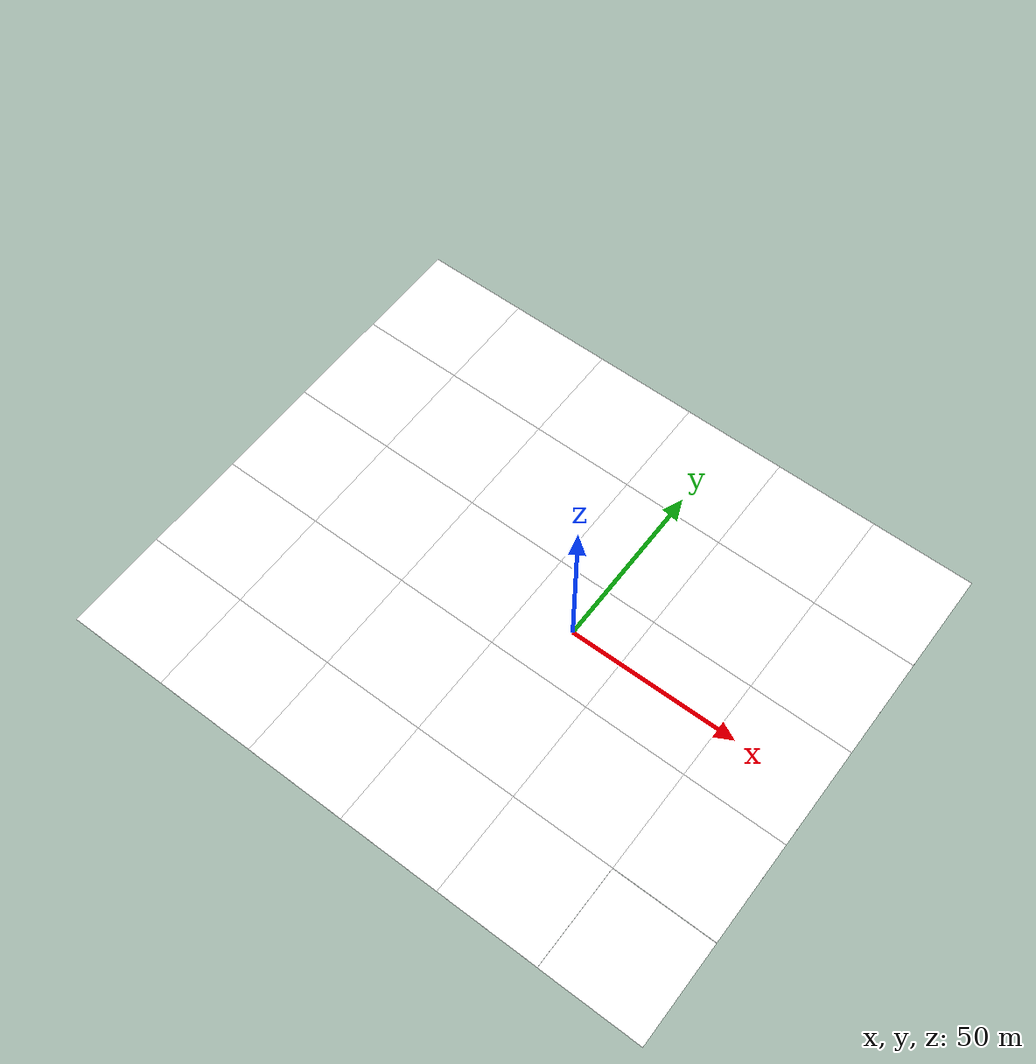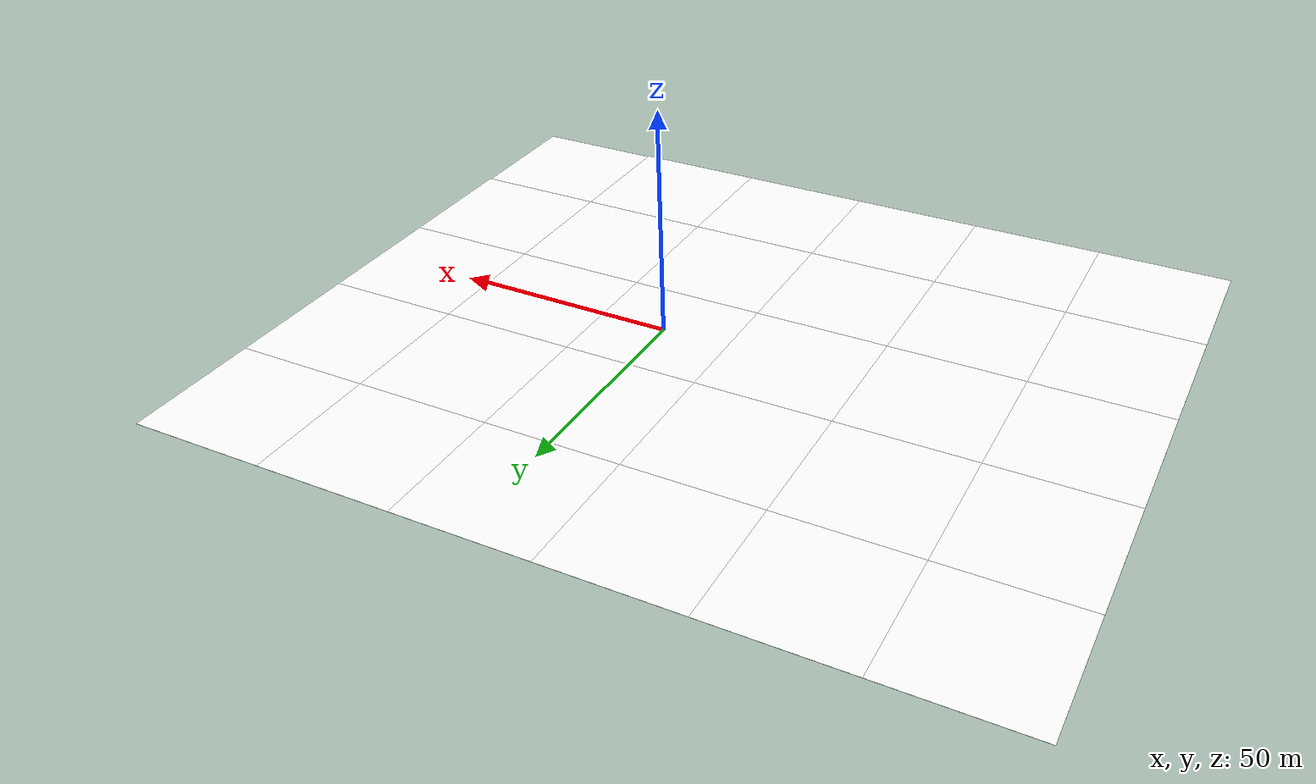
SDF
<sdf version="1.10">
 <world name="iris_runway2">
  <physics name="1ms" type="ignore">
   <max_step_size>0.001</max_step_size>
   <real_time_factor>1</real_time_factor>
   <real_time_update_rate>1000</real_time_update_rate>
  </physics>
  <plugin name="gz::sim::systems::Physics" filename="gz-sim-physics-system"/>
  <plugin name="gz::sim::systems::Sensors" filename="gz-sim-sensors-system">
   <render_engine>ogre2</render_engine>
  </plugin>
  <plugin name="gz::sim::systems::UserCommands" filename="gz-sim-user-commands-system"/>
  <plugin name="gz::sim::systems::SceneBroadcaster" filename="gz-sim-scene-broadcaster-system"/>
  <plugin name="gz::sim::systems::Imu" filename="gz-sim-imu-system"/>
  <scene>
   <ambient>1 1 1 1</ambient>
   <background>0.800000012 0.800000012 0.800000012 1</background>
   <shadows>true</shadows>
  </scene>
  <gravity>0 0 -9.8000000000000007</gravity>
  <magnetic_field>5.5644999999999998e-06 2.2875799999999999e-05 -4.2388400000000002e-05</magnetic_field>
  <atmosphere type="adiabatic"/>
  <include><uri>model://custom_ground_plane</uri><pose>0 0 -0.001 0 0 0</pose></include>
  <include>
   <uri>file:///home/ds/Documents/gh/ardugzros2/install/tutorial_2/share/tutorial_2/models/grasspatch</uri>
   <name>grass_patch_1</name>
   <pose>60 -60 0 0 0 0</pose>
  </include>
  <include>
   <uri>file:///home/ds/Documents/gh/ardugzros2/install/tutorial_2/share/tutorial_2/models/grasspatch</uri>
   <name>grass_patch_2</name>
   <pose>30 -60 0 0 0 0</pose>
  </include>
  <include>
   <uri>file:///home/ds/Documents/gh/ardugzros2/install/tutorial_2/share/tutorial_2/models/grasspatch</uri>
   <name>grass_patch_3</name>
   <pose>0 -60 0 0 0 0</pose>
  </include>
  <include>
   <uri>file:///home/ds/Documents/gh/ardugzros2/install/tutorial_2/share/tutorial_2/models/grasspatch</uri>
   <name>grass_patch_4</name>
   <pose>-30 -60 0 0 0 0</pose>
  </include>
  <include>
   <uri>file:///home/ds/Documents/gh/ardugzros2/install/tutorial_2/share/tutorial_2/models/grasspatch</uri>
   <name>grass_patch_5</name>
   <pose>-60 -60 0 0 0 0</pose>
  </include>
  <include>
   <uri>file:///home/ds/Documents/gh/ardugzros2/install/tutorial_2/share/tutorial_2/models/grasspatch</uri>
   <name>grass_patch_6</name>
   <pose>-90 -60 0 0 0 0</pose>
  </include>
  <include>
   <uri>file:///home/ds/Documents/gh/ardugzros2/install/tutorial_2/share/tutorial_2/models/grasspatch</uri>
   <name>grass_patch_7</name>
   <pose>60 -30 0 0 0 0</pose>
  </include>
  <include>
   <uri>file:///home/ds/Documents/gh/ardugzros2/install/tutorial_2/share/tutorial_2/models/grasspatch</uri>
   <name>grass_patch_8</name>
   <pose>30 -30 0 0 0 0</pose>
  </include>
  <include>
   <uri>file:///home/ds/Documents/gh/ardugzros2/install/tutorial_2/share/tutorial_2/models/grasspatch</uri>
   <name>grass_patch_9</name>
   <pose>0 -30 0 0 0 0</pose>
  </include>
  <include>
   <uri>file:///home/ds/Documents/gh/ardugzros2/install/tutorial_2/share/tutorial_2/models/grasspatch</uri>
   <name>grass_patch_10</name>
   <pose>-30 -30 0 0 0 0</pose>
  </include>
  <include>
   <uri>file:///home/ds/Documents/gh/ardugzros2/install/tutorial_2/share/tutorial_2/models/grasspatch</uri>
   <name>grass_patch_11</name>
   <pose>-60 -30 0 0 0 0</pose>
  </include>
  <include>
   <uri>file:///home/ds/Documents/gh/ardugzros2/install/tutorial_2/share/tutorial_2/models/grasspatch</uri>
   <name>grass_patch_12</name>
   <pose>-90 -30 0 0 0 0</pose>
  </include>
  <include>
   <uri>file:///home/ds/Documents/gh/ardugzros2/install/tutorial_2/share/tutorial_2/models/grasspatch</uri>
   <name>grass_patch_13</name>
   <pose>60 0 0 0 0 0</pose>
  </include>
  <include>
   <uri>file:///home/ds/Documents/gh/ardugzros2/install/tutorial_2/share/tutorial_2/models/grasspatch</uri>
   <name>grass_patch_14</name>
   <pose>30 0 0 0 0 0</pose>
  </include>
  <include>
   <uri>file:///home/ds/Documents/gh/ardugzros2/install/tutorial_2/share/tutorial_2/models/grasspatch</uri>
   <name>grass_patch_15</name>
  </include>
  <include>
   <uri>file:///home/ds/Documents/gh/ardugzros2/install/tutorial_2/share/tutorial_2/models/grasspatch</uri>
   <name>grass_patch_16</name>
   <pose>-30 0 0 0 0 0</pose>
  </include>
  <include>
   <uri>file:///home/ds/Documents/gh/ardugzros2/install/tutorial_2/share/tutorial_2/models/grasspatch</uri>
   <name>grass_patch_17</name>
   <pose>-60 0 0 0 0 0</pose>
  </include>
  <include>
   <uri>file:///home/ds/Documents/gh/ardugzros2/install/tutorial_2/share/tutorial_2/models/grasspatch</uri>
   <name>grass_patch_18</name>
   <pose>-90 0 0 0 0 0</pose>
  </include>
  <include>
   <uri>file:///home/ds/Documents/gh/ardugzros2/install/tutorial_2/share/tutorial_2/models/grasspatch</uri>
   <name>grass_patch_19</name>
   <pose>60 30 0 0 0 0</pose>
  </include>
  <include>
   <uri>file:///home/ds/Documents/gh/ardugzros2/install/tutorial_2/share/tutorial_2/models/grasspatch</uri>
   <name>grass_patch_20</name>
   <pose>30 30 0 0 0 0</pose>
  </include>
  <include>
   <uri>file:///home/ds/Documents/gh/ardugzros2/install/tutorial_2/share/tutorial_2/models/grasspatch</uri>
   <name>grass_patch_21</name>
   <pose>0 30 0 0 0 0</pose>
  </include>
  <include>
   <uri>file:///home/ds/Documents/gh/ardugzros2/install/tutorial_2/share/tutorial_2/models/grasspatch</uri>
   <name>grass_patch_22</name>
   <pose>-30 30 0 0 0 0</pose>
  </include>
  <include>
   <uri>file:///home/ds/Documents/gh/ardugzros2/install/tutorial_2/share/tutorial_2/models/grasspatch</uri>
   <name>grass_patch_23</name>
   <pose>-60 30 0 0 0 0</pose>
  </include>
  <include>
   <uri>file:///home/ds/Documents/gh/ardugzros2/install/tutorial_2/share/tutorial_2/models/grasspatch</uri>
   <name>grass_patch_24</name>
   <pose>-90 30 0 0 0 0</pose>
  </include>
  <include>
   <uri>file:///home/ds/Documents/gh/ardugzros2/install/tutorial_2/share/tutorial_2/models/grasspatch</uri>
   <name>grass_patch_25</name>
   <pose>60 60 0 0 0 0</pose>
  </include>
  <include>
   <uri>file:///home/ds/Documents/gh/ardugzros2/install/tutorial_2/share/tutorial_2/models/grasspatch</uri>
   <name>grass_patch_26</name>
   <pose>30 60 0 0 0 0</pose>
  </include>
  <include>
   <uri>file:///home/ds/Documents/gh/ardugzros2/install/tutorial_2/share/tutorial_2/models/grasspatch</uri>
   <name>grass_patch_27</name>
   <pose>0 60 0 0 0 0</pose>
  </include>
  <include>
   <uri>file:///home/ds/Documents/gh/ardugzros2/install/tutorial_2/share/tutorial_2/models/grasspatch</uri>
   <name>grass_patch_28</name>
   <pose>-30 60 0 0 0 0</pose>
  </include>
  <include>
   <uri>file:///home/ds/Documents/gh/ardugzros2/install/tutorial_2/share/tutorial_2/models/grasspatch</uri>
   <name>grass_patch_29</name>
   <pose>-60 60 0 0 0 0</pose>
  </include>
  <include>
   <uri>file:///home/ds/Documents/gh/ardugzros2/install/tutorial_2/share/tutorial_2/models/grasspatch</uri>
   <name>grass_patch_30</name>
   <pose>-90 60 0 0 0 0</pose>
  </include>
  <light name="sun" type="directional">
   <pose>0 0 10 0 0 0</pose>
   <intensity>1</intensity>
   <direction>-0.5 0.10000000000000001 -0.90000000000000002</direction>
   <diffuse>0.800000012 0.800000012 0.800000012 1</diffuse>
   <specular>0.800000012 0.800000012 0.800000012 1</specular>
   <attenuation>
    <range>1000</range>
    <linear>0.01</linear>
    <constant>0.90000000000000002</constant>
    <quadratic>0.001</quadratic>
   </attenuation>
   <spot><inner_angle>0</inner_angle><outer_angle>0</outer_angle><falloff>0</falloff></spot>
  </light>
 </world>
</sdf>

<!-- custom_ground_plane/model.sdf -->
<sdf version="1.5">
    <model name="ground_plane">
        <static>true</static>
        <link name="link">
            <collision name="collision">
                <geometry>
                    <plane>
                        <normal>0 0 1</normal>
                        <size>90 90</size>
                    </plane>
                </geometry>
                <surface>
                    <friction>
                        <ode>
                            <mu>100</mu>
                            <mu2>50</mu2>
                        </ode>
                    </friction>
                </surface>
            </collision>
            <visual name="visual">
                <cast_shadows>false</cast_shadows>
                <geometry>
                    <plane>
                        <normal>0 0 1</normal>
                        <size>1 1</size>
                    </plane>
                </geometry>
                <material>
                    <ambient>0.3 0.3 0.3 1</ambient>
                    <diffuse>0.7 0.7 0.7 1</diffuse>
                    <specular>0.01 0.01 0.01 1</specular>
                </material>
            </visual>
        </link>
    </model>
</sdf>

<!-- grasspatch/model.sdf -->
<sdf version='1.4'>
  <model name='grasspatch'>
    <static>true</static>
    <link name='link'>

      <visual name='visual_s10'>
        <pose>0 0 0 0 0 0</pose>
        <cast_shadows>false</cast_shadows>
        <geometry>
          <plane>
            <normal>0 0 1</normal>
            <size>30 30</size>
          </plane>
        </geometry>
        <material>
          <diffuse>1.0 1.0 1.0</diffuse>
          <specular>1.0 1.0 1.0</specular>
          <pbr>
            <metal>
              <albedo_map>materials/textures/grass_dry.png</albedo_map>
              <normal_map>materials/textures/grass_dry.png</normal_map>
            </metal>
          </pbr>
        </material>
      </visual>

    </link>
  </model>
</sdf>
